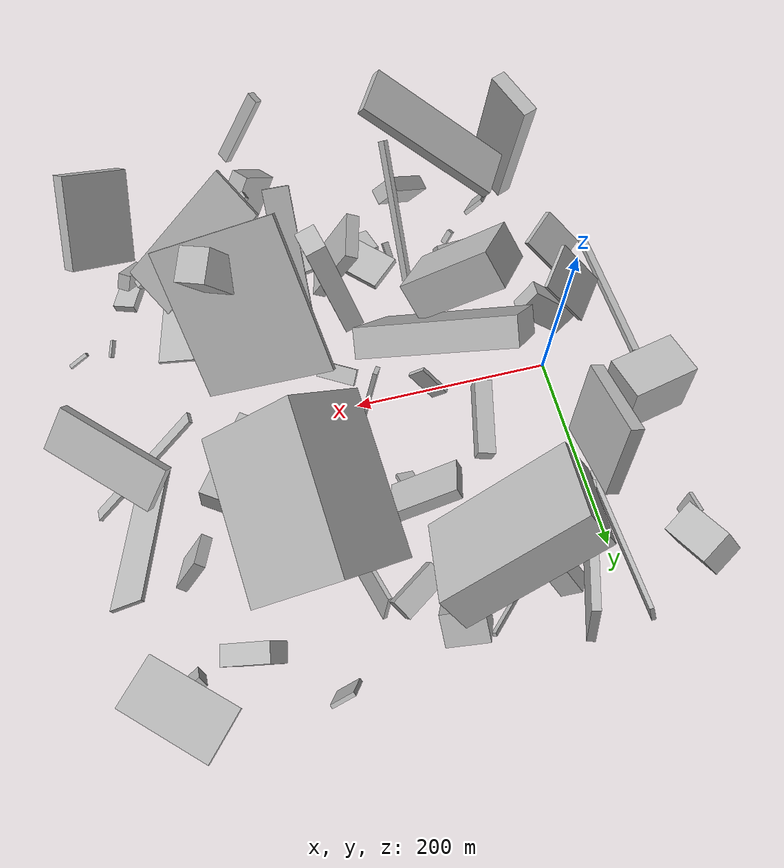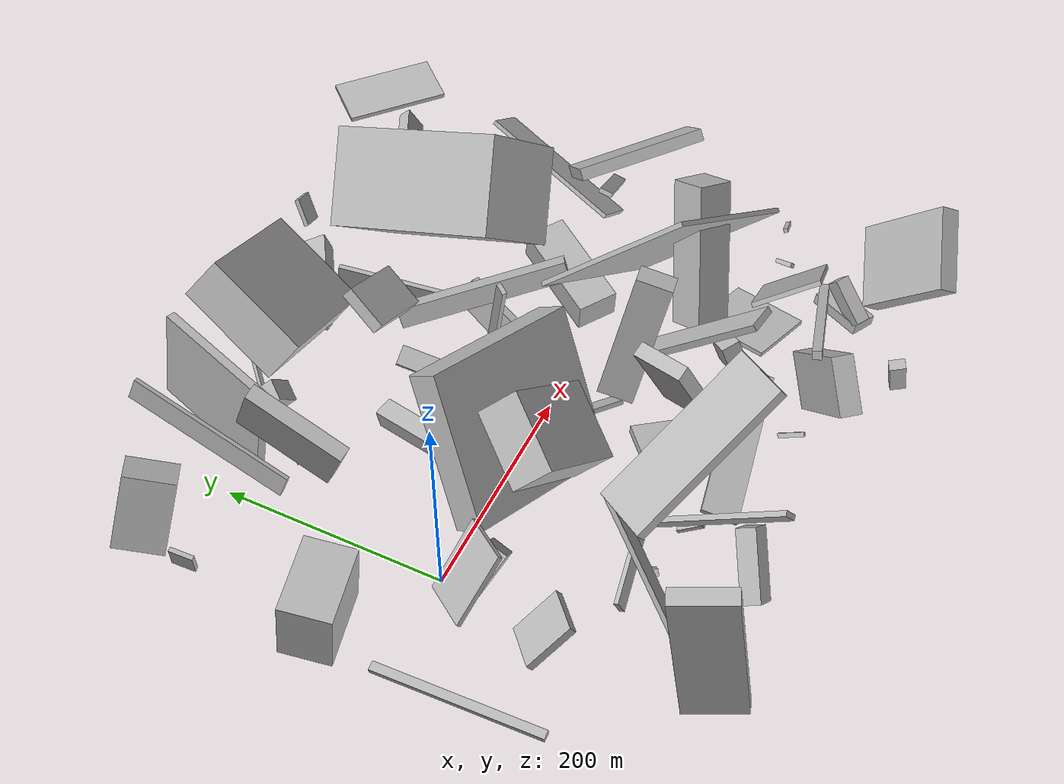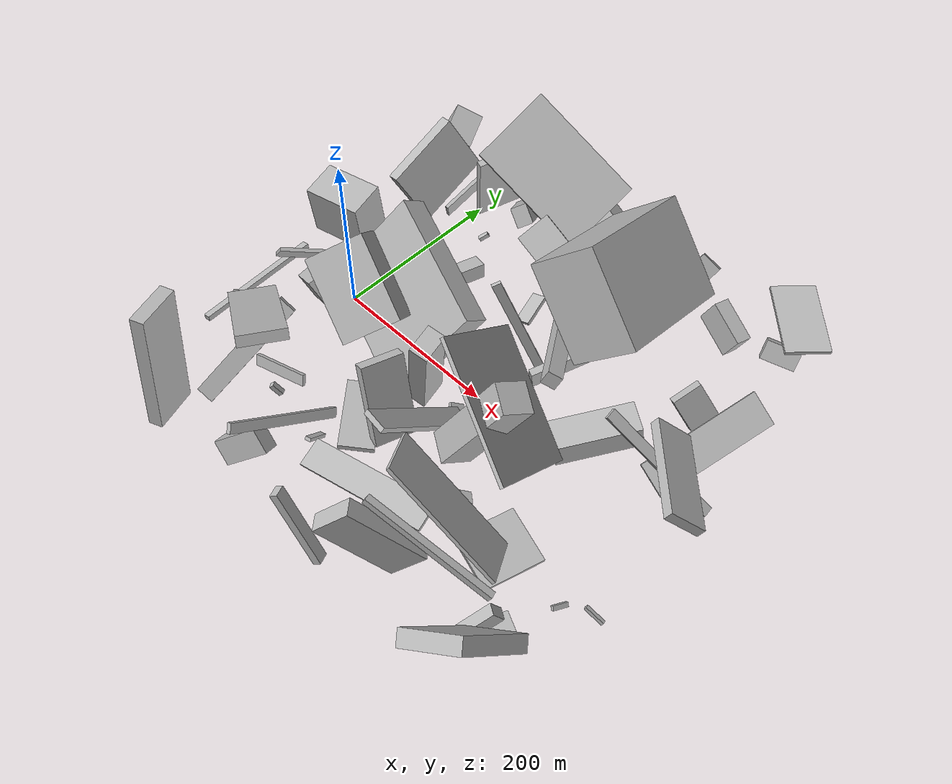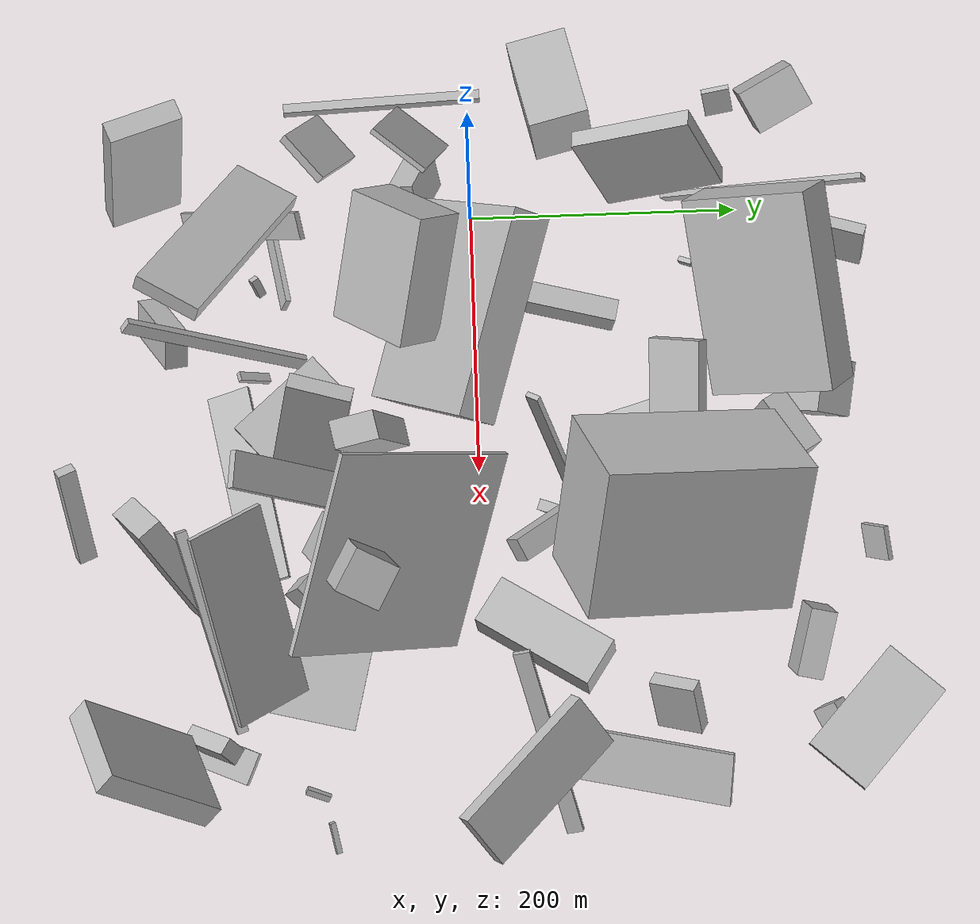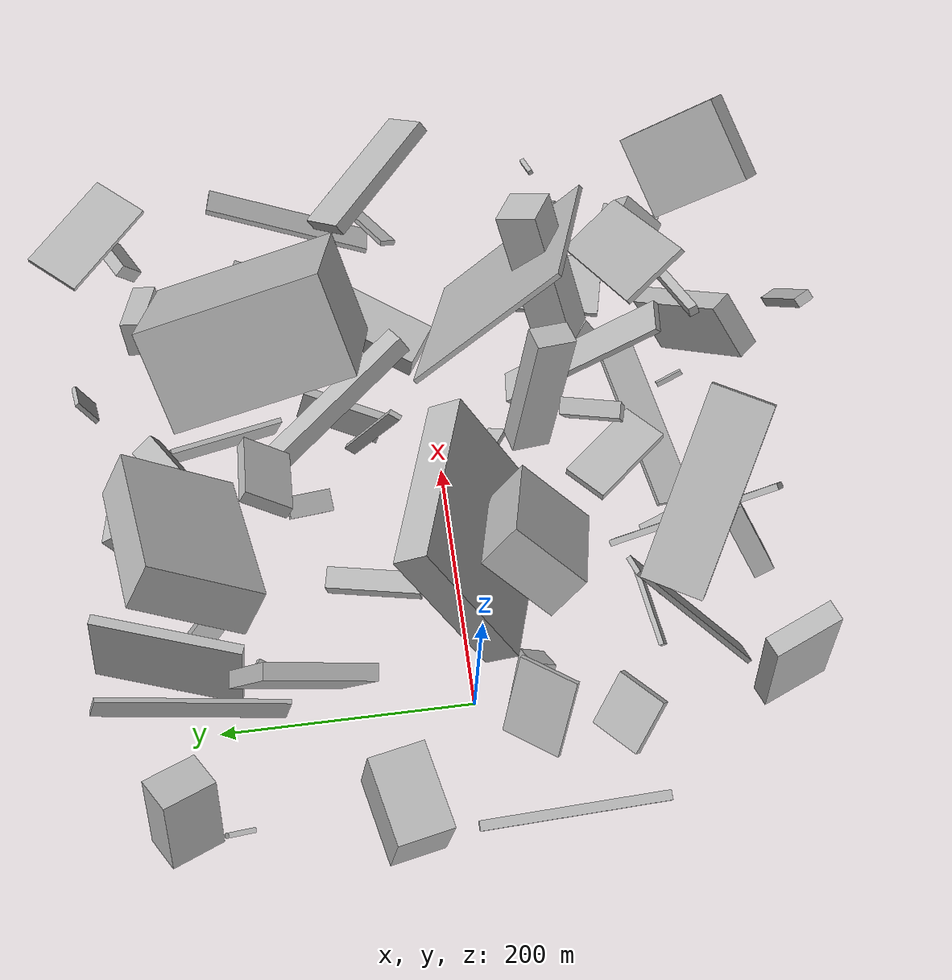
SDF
<sdf version="1.6">
 <world name="default">
  <scene>
   <sky><clouds><speed>12</speed></clouds></sky>
   <ambient>0.4 0.4 0.4 1</ambient>
   <background>0.7 0.7 0.7 1</background>
   <shadows>1</shadows>
  </scene>
  <gravity>0 0 -9.8066</gravity>
  <magnetic_field>6e-06 2.3e-05 -4.2e-05</magnetic_field>
  <physics default="0" name="default_physics" type="ode">
   <ode>
    <solver>
     <type>quick</type>
     <iters>10</iters>
     <sor>1.0</sor>
     <use_dynamic_moi_rescaling>0</use_dynamic_moi_rescaling>
    </solver>
    <constraints>
     <cfm>0</cfm>
     <erp>0.2</erp>
     <contact_max_correcting_vel>100</contact_max_correcting_vel>
     <contact_surface_layer>0.001</contact_surface_layer>
    </constraints>
   </ode>
   <max_step_size>0.004</max_step_size>
   <real_time_factor>1</real_time_factor>
   <real_time_update_rate>250</real_time_update_rate>
  </physics>
  <light name="sun" type="directional">
   <pose>0 0 10 0 0 0</pose>
   <diffuse>0.8 0.8 0.8 1</diffuse>
   <specular>0.2 0.2 0.2 1</specular>
   <attenuation>
    <range>1000</range>
    <constant>0.9</constant>
    <linear>0.01</linear>
    <quadratic>0.001</quadratic>
   </attenuation>
   <direction>-0.5 0.1 -0.9</direction>
  </light>
  <model name="building_1">
   <static>0</static>
   <pose>108.92761896593528 1.1091570338049124 90.9158892950735 0.444851006596337 -0.9033970418903438 0.9041145474530236</pose>
   <link name="link">
    <gravity>0</gravity>
    <pose>0 0 14.5 0 0 0</pose>
    <collision name="collision"><geometry><box><size>132 150 29</size></box></geometry></collision>
    <visual name="visual">
     <cast_shadows>0</cast_shadows>
     <geometry><box><size>132 150 29</size></box></geometry>
     <material>
      <script>
       <uri>model://HANNAS_wall/materials/scripts</uri>
       <uri>model://HANNAS_wall/materials/textures</uri>
       <name>vrc/HANNAS_wall</name>
      </script>
     </material>
    </visual>
   </link>
  </model>
  <model name="building_2">
   <static>0</static>
   <pose>198.25160042323378 143.05347159926956 49.079175533433244 1.3090513834178814 0.45467342652101583 0.5043819559390877</pose>
   <link name="link">
    <gravity>0</gravity>
    <pose>0 0 75.0 0 0 0</pose>
    <collision name="collision"><geometry><box><size>17 17 150</size></box></geometry></collision>
    <visual name="visual">
     <cast_shadows>0</cast_shadows>
     <geometry><box><size>17 17 150</size></box></geometry>
     <material>
      <script>
       <uri>model://HANNAS_wall/materials/scripts</uri>
       <uri>model://HANNAS_wall/materials/textures</uri>
       <name>vrc/HANNAS_wall</name>
      </script>
     </material>
    </visual>
   </link>
  </model>
  <model name="building_3">
   <static>0</static>
   <pose>271.309448827521 276.1596261565147 34.9191900610307 -0.48017534017398056 0.5004084972202174 0.17279518627782497</pose>
   <link name="link">
    <gravity>0</gravity>
    <pose>0 0 12.5 0 0 0</pose>
    <collision name="collision"><geometry><box><size>25 4 25</size></box></geometry></collision>
    <visual name="visual">
     <cast_shadows>0</cast_shadows>
     <geometry><box><size>25 4 25</size></box></geometry>
     <material>
      <script>
       <uri>model://HANNAS_wall/materials/scripts</uri>
       <uri>model://HANNAS_wall/materials/textures</uri>
       <name>vrc/HANNAS_wall</name>
      </script>
     </material>
    </visual>
   </link>
  </model>
  <model name="building_4">
   <static>0</static>
   <pose>-47.80409686620221 70.63854540356718 43.142333355688585 1.5882969257669508 0.0937636456736694 -1.3547335050061855</pose>
   <link name="link">
    <gravity>0</gravity>
    <pose>0 0 34.5 0 0 0</pose>
    <collision name="collision"><geometry><box><size>45 66 69</size></box></geometry></collision>
    <visual name="visual">
     <cast_shadows>0</cast_shadows>
     <geometry><box><size>45 66 69</size></box></geometry>
     <material>
      <script>
       <uri>model://HANNAS_wall/materials/scripts</uri>
       <uri>model://HANNAS_wall/materials/textures</uri>
       <name>vrc/HANNAS_wall</name>
      </script>
     </material>
    </visual>
   </link>
  </model>
  <model name="building_5">
   <static>0</static>
   <pose>126.44233084237415 -162.56508088388418 19.63401092244566 2.4922029464192317 -0.11703588601346196 0.2426704155922388</pose>
   <link name="link">
    <gravity>0</gravity>
    <pose>0 0 2.0 0 0 0</pose>
    <collision name="collision"><geometry><box><size>7 26 4</size></box></geometry></collision>
    <visual name="visual">
     <cast_shadows>0</cast_shadows>
     <geometry><box><size>7 26 4</size></box></geometry>
     <material>
      <script>
       <uri>model://HANNAS_wall/materials/scripts</uri>
       <uri>model://HANNAS_wall/materials/textures</uri>
       <name>vrc/HANNAS_wall</name>
      </script>
     </material>
    </visual>
   </link>
  </model>
  <model name="building_6">
   <static>0</static>
   <pose>206.0800941940971 51.276083018961664 73.07930872677183 1.2401501249241527 0.09093470712722963 2.562438088434931</pose>
   <link name="link">
    <gravity>0</gravity>
    <pose>0 0 5.0 0 0 0</pose>
    <collision name="collision"><geometry><box><size>4 150 10</size></box></geometry></collision>
    <visual name="visual">
     <cast_shadows>0</cast_shadows>
     <geometry><box><size>4 150 10</size></box></geometry>
     <material>
      <script>
       <uri>model://HANNAS_wall/materials/scripts</uri>
       <uri>model://HANNAS_wall/materials/textures</uri>
       <name>vrc/HANNAS_wall</name>
      </script>
     </material>
    </visual>
   </link>
  </model>
  <model name="building_7">
   <static>0</static>
   <pose>51.75686522283982 -145.3660532538313 37.161663748513085 0.39441601455398634 0.1678380514978433 -2.962211648278622</pose>
   <link name="link">
    <gravity>0</gravity>
    <pose>0 0 6.5 0 0 0</pose>
    <collision name="collision"><geometry><box><size>66 4 13</size></box></geometry></collision>
    <visual name="visual">
     <cast_shadows>0</cast_shadows>
     <geometry><box><size>66 4 13</size></box></geometry>
     <material>
      <script>
       <uri>model://HANNAS_wall/materials/scripts</uri>
       <uri>model://HANNAS_wall/materials/textures</uri>
       <name>vrc/HANNAS_wall</name>
      </script>
     </material>
    </visual>
   </link>
  </model>
  <model name="building_8">
   <static>0</static>
   <pose>314.13221278571245 130.13080031045814 101.69990496350567 0.7539332498833182 -0.2749399435415537 -1.4852931022130433</pose>
   <link name="link">
    <gravity>0</gravity>
    <pose>0 0 55.5 0 0 0</pose>
    <collision name="collision"><geometry><box><size>148 84 111</size></box></geometry></collision>
    <visual name="visual">
     <cast_shadows>0</cast_shadows>
     <geometry><box><size>148 84 111</size></box></geometry>
     <material>
      <script>
       <uri>model://HANNAS_wall/materials/scripts</uri>
       <uri>model://HANNAS_wall/materials/textures</uri>
       <name>vrc/HANNAS_wall</name>
      </script>
     </material>
    </visual>
   </link>
  </model>
  <model name="building_9">
   <static>0</static>
   <pose>251.46218939622824 75.69975972268443 27.983348864827583 0.5929756755089176 -1.2695999818338821 -0.9777076243305453</pose>
   <link name="link">
    <gravity>0</gravity>
    <pose>0 0 4.0 0 0 0</pose>
    <collision name="collision"><geometry><box><size>32 69 8</size></box></geometry></collision>
    <visual name="visual">
     <cast_shadows>0</cast_shadows>
     <geometry><box><size>32 69 8</size></box></geometry>
     <material>
      <script>
       <uri>model://HANNAS_wall/materials/scripts</uri>
       <uri>model://HANNAS_wall/materials/textures</uri>
       <name>vrc/HANNAS_wall</name>
      </script>
     </material>
    </visual>
   </link>
  </model>
  <model name="building_10">
   <static>0</static>
   <pose>153.48261409373862 235.01066010380458 37.91238833348297 0.6801048295756384 -0.25590591778857114 2.970894613970442</pose>
   <link name="link">
    <gravity>0</gravity>
    <pose>0 0 20.5 0 0 0</pose>
    <collision name="collision"><geometry><box><size>40 31 41</size></box></geometry></collision>
    <visual name="visual">
     <cast_shadows>0</cast_shadows>
     <geometry><box><size>40 31 41</size></box></geometry>
     <material>
      <script>
       <uri>model://HANNAS_wall/materials/scripts</uri>
       <uri>model://HANNAS_wall/materials/textures</uri>
       <name>vrc/HANNAS_wall</name>
      </script>
     </material>
    </visual>
   </link>
  </model>
  <model name="building_11">
   <static>0</static>
   <pose>344.3313192799353 -184.75657756696557 117.12587466690236 2.046882346882766 0.7111935275947001 -2.2463232432462896</pose>
   <link name="link">
    <gravity>0</gravity>
    <pose>0 0 29.0 0 0 0</pose>
    <collision name="collision"><geometry><box><size>4 150 58</size></box></geometry></collision>
    <visual name="visual">
     <cast_shadows>0</cast_shadows>
     <geometry><box><size>4 150 58</size></box></geometry>
     <material>
      <script>
       <uri>model://HANNAS_wall/materials/scripts</uri>
       <uri>model://HANNAS_wall/materials/textures</uri>
       <name>vrc/HANNAS_wall</name>
      </script>
     </material>
    </visual>
   </link>
  </model>
  <model name="building_12">
   <static>0</static>
   <pose>27.67088477975269 -143.89645777411636 146.68886771225465 0.08129965539777025 -1.0061757995490062 2.5353327469812714</pose>
   <link name="link">
    <gravity>0</gravity>
    <pose>0 0 75.0 0 0 0</pose>
    <collision name="collision"><geometry><box><size>11 48 150</size></box></geometry></collision>
    <visual name="visual">
     <cast_shadows>0</cast_shadows>
     <geometry><box><size>11 48 150</size></box></geometry>
     <material>
      <script>
       <uri>model://HANNAS_wall/materials/scripts</uri>
       <uri>model://HANNAS_wall/materials/textures</uri>
       <name>vrc/HANNAS_wall</name>
      </script>
     </material>
    </visual>
   </link>
  </model>
  <model name="building_13">
   <static>0</static>
   <pose>441.6505852410696 29.50773460936116 70.51883789570535 -0.1148339543800434 0.7023443152937123 0.7368856496147438</pose>
   <link name="link">
    <gravity>0</gravity>
    <pose>0 0 5.5 0 0 0</pose>
    <collision name="collision"><geometry><box><size>45 117 11</size></box></geometry></collision>
    <visual name="visual">
     <cast_shadows>0</cast_shadows>
     <geometry><box><size>45 117 11</size></box></geometry>
     <material>
      <script>
       <uri>model://HANNAS_wall/materials/scripts</uri>
       <uri>model://HANNAS_wall/materials/textures</uri>
       <name>vrc/HANNAS_wall</name>
      </script>
     </material>
    </visual>
   </link>
  </model>
  <model name="building_14">
   <static>0</static>
   <pose>65.584072626675 -78.1203078863408 113.86144953897222 0.9669818712258077 -0.6619527659017845 2.8958082803707916</pose>
   <link name="link">
    <gravity>0</gravity>
    <pose>0 0 33.5 0 0 0</pose>
    <collision name="collision"><geometry><box><size>95 39 67</size></box></geometry></collision>
    <visual name="visual">
     <cast_shadows>0</cast_shadows>
     <geometry><box><size>95 39 67</size></box></geometry>
     <material>
      <script>
       <uri>model://HANNAS_wall/materials/scripts</uri>
       <uri>model://HANNAS_wall/materials/textures</uri>
       <name>vrc/HANNAS_wall</name>
      </script>
     </material>
    </visual>
   </link>
  </model>
  <model name="building_15">
   <static>0</static>
   <pose>183.12780183464247 209.92753221198657 15.632828613654608 -0.07273418890019225 0.03508444722024155 -1.5741671485204205</pose>
   <link name="link">
    <gravity>0</gravity>
    <pose>0 0 2.0 0 0 0</pose>
    <collision name="collision"><geometry><box><size>4 8 4</size></box></geometry></collision>
    <visual name="visual">
     <cast_shadows>0</cast_shadows>
     <geometry><box><size>4 8 4</size></box></geometry>
     <material>
      <script>
       <uri>model://HANNAS_wall/materials/scripts</uri>
       <uri>model://HANNAS_wall/materials/textures</uri>
       <name>vrc/HANNAS_wall</name>
      </script>
     </material>
    </visual>
   </link>
  </model>
  <model name="building_16">
   <static>0</static>
   <pose>145.27001832934212 -104.79018052795047 71.59741765336375 -1.6792455989428243 -0.11587739946529418 -2.4194974907411972</pose>
   <link name="link">
    <gravity>0</gravity>
    <pose>0 0 38.0 0 0 0</pose>
    <collision name="collision"><geometry><box><size>37 7 76</size></box></geometry></collision>
    <visual name="visual">
     <cast_shadows>0</cast_shadows>
     <geometry><box><size>37 7 76</size></box></geometry>
     <material>
      <script>
       <uri>model://HANNAS_wall/materials/scripts</uri>
       <uri>model://HANNAS_wall/materials/textures</uri>
       <name>vrc/HANNAS_wall</name>
      </script>
     </material>
    </visual>
   </link>
  </model>
  <model name="building_17">
   <static>0</static>
   <pose>195.49985942945017 -27.27328294606699 9.939008811027279 1.8549362795923843 -0.9635150105756849 0.7304685750423027</pose>
   <link name="link">
    <gravity>0</gravity>
    <pose>0 0 21.0 0 0 0</pose>
    <collision name="collision"><geometry><box><size>4 17 42</size></box></geometry></collision>
    <visual name="visual">
     <cast_shadows>0</cast_shadows>
     <geometry><box><size>4 17 42</size></box></geometry>
     <material>
      <script>
       <uri>model://HANNAS_wall/materials/scripts</uri>
       <uri>model://HANNAS_wall/materials/textures</uri>
       <name>vrc/HANNAS_wall</name>
      </script>
     </material>
    </visual>
   </link>
  </model>
  <model name="building_18">
   <static>0</static>
   <pose>217.26068953064262 -182.94934339270765 23.737473127904735 -1.2953731329364504 -0.0575630570490676 0.1940110884674498</pose>
   <link name="link">
    <gravity>0</gravity>
    <pose>0 0 16.0 0 0 0</pose>
    <collision name="collision"><geometry><box><size>150 4 32</size></box></geometry></collision>
    <visual name="visual">
     <cast_shadows>0</cast_shadows>
     <geometry><box><size>150 4 32</size></box></geometry>
     <material>
      <script>
       <uri>model://HANNAS_wall/materials/scripts</uri>
       <uri>model://HANNAS_wall/materials/textures</uri>
       <name>vrc/HANNAS_wall</name>
      </script>
     </material>
    </visual>
   </link>
  </model>
  <model name="building_19">
   <static>0</static>
   <pose>406.6520395727039 252.1589130695408 36.68635667170851 0.9768254480423515 0.21807874800904573 0.4655465089382893</pose>
   <link name="link">
    <gravity>0</gravity>
    <pose>0 0 5.5 0 0 0</pose>
    <collision name="collision"><geometry><box><size>39 22 11</size></box></geometry></collision>
    <visual name="visual">
     <cast_shadows>0</cast_shadows>
     <geometry><box><size>39 22 11</size></box></geometry>
     <material>
      <script>
       <uri>model://HANNAS_wall/materials/scripts</uri>
       <uri>model://HANNAS_wall/materials/textures</uri>
       <name>vrc/HANNAS_wall</name>
      </script>
     </material>
    </visual>
   </link>
  </model>
  <model name="building_20">
   <static>0</static>
   <pose>286.2004195757087 -224.80573043421927 63.08862996705318 1.527129767104768 -0.8103144048098492 -2.4048571852372493</pose>
   <link name="link">
    <gravity>0</gravity>
    <pose>0 0 9.5 0 0 0</pose>
    <collision name="collision"><geometry><box><size>101 50 19</size></box></geometry></collision>
    <visual name="visual">
     <cast_shadows>0</cast_shadows>
     <geometry><box><size>101 50 19</size></box></geometry>
     <material>
      <script>
       <uri>model://HANNAS_wall/materials/scripts</uri>
       <uri>model://HANNAS_wall/materials/textures</uri>
       <name>vrc/HANNAS_wall</name>
      </script>
     </material>
    </visual>
   </link>
  </model>
  <model name="building_21">
   <static>0</static>
   <pose>99.26611399477568 103.37118377920183 50.41794446233584 1.4721571936179456 -0.10450850415750572 -0.21615586374680962</pose>
   <link name="link">
    <gravity>0</gravity>
    <pose>0 0 37.0 0 0 0</pose>
    <collision name="collision"><geometry><box><size>17 18 74</size></box></geometry></collision>
    <visual name="visual">
     <cast_shadows>0</cast_shadows>
     <geometry><box><size>17 18 74</size></box></geometry>
     <material>
      <script>
       <uri>model://HANNAS_wall/materials/scripts</uri>
       <uri>model://HANNAS_wall/materials/textures</uri>
       <name>vrc/HANNAS_wall</name>
      </script>
     </material>
    </visual>
   </link>
  </model>
  <model name="building_22">
   <static>0</static>
   <pose>470.72890589318297 -111.86367511514258 18.530793527064265 2.0060452940399953 0.9961490278584332 -2.4348328868495988</pose>
   <link name="link">
    <gravity>0</gravity>
    <pose>0 0 2.0 0 0 0</pose>
    <collision name="collision"><geometry><box><size>4 23 4</size></box></geometry></collision>
    <visual name="visual">
     <cast_shadows>0</cast_shadows>
     <geometry><box><size>4 23 4</size></box></geometry>
     <material>
      <script>
       <uri>model://HANNAS_wall/materials/scripts</uri>
       <uri>model://HANNAS_wall/materials/textures</uri>
       <name>vrc/HANNAS_wall</name>
      </script>
     </material>
    </visual>
   </link>
  </model>
  <model name="building_23">
   <static>0</static>
   <pose>259.3783957679001 -199.32771264890073 7.4336194877664745 2.3332922150375697 -0.2975626060138215 -1.2852545758391543</pose>
   <link name="link">
    <gravity>0</gravity>
    <pose>0 0 2.0 0 0 0</pose>
    <collision name="collision"><geometry><box><size>23 4 4</size></box></geometry></collision>
    <visual name="visual">
     <cast_shadows>0</cast_shadows>
     <geometry><box><size>23 4 4</size></box></geometry>
     <material>
      <script>
       <uri>model://HANNAS_wall/materials/scripts</uri>
       <uri>model://HANNAS_wall/materials/textures</uri>
       <name>vrc/HANNAS_wall</name>
      </script>
     </material>
    </visual>
   </link>
  </model>
  <model name="building_24">
   <static>0</static>
   <pose>192.05206143267165 -65.90613918253973 68.38124238305207 -0.21908819118695452 0.1910549115262642 -1.4031955453495832</pose>
   <link name="link">
    <gravity>0</gravity>
    <pose>0 0 61.0 0 0 0</pose>
    <collision name="collision"><geometry><box><size>31 20 122</size></box></geometry></collision>
    <visual name="visual">
     <cast_shadows>0</cast_shadows>
     <geometry><box><size>31 20 122</size></box></geometry>
     <material>
      <script>
       <uri>model://HANNAS_wall/materials/scripts</uri>
       <uri>model://HANNAS_wall/materials/textures</uri>
       <name>vrc/HANNAS_wall</name>
      </script>
     </material>
    </visual>
   </link>
  </model>
  <model name="building_25">
   <static>0</static>
   <pose>354.62669199752605 -76.42067063004951 98.72467701578478 0.7995901483951052 -0.7172725776813803 -1.3350425459473734</pose>
   <link name="link">
    <gravity>0</gravity>
    <pose>0 0 73.0 0 0 0</pose>
    <collision name="collision"><geometry><box><size>150 4 146</size></box></geometry></collision>
    <visual name="visual">
     <cast_shadows>0</cast_shadows>
     <geometry><box><size>150 4 146</size></box></geometry>
     <material>
      <script>
       <uri>model://HANNAS_wall/materials/scripts</uri>
       <uri>model://HANNAS_wall/materials/textures</uri>
       <name>vrc/HANNAS_wall</name>
      </script>
     </material>
    </visual>
   </link>
  </model>
  <model name="building_26">
   <static>0</static>
   <pose>38.463185359579164 -165.38696103266233 73.61368499360071 0.9638263356743192 -0.4803793241743744 -1.0517523667112825</pose>
   <link name="link">
    <gravity>0</gravity>
    <pose>0 0 10.0 0 0 0</pose>
    <collision name="collision"><geometry><box><size>4 150 20</size></box></geometry></collision>
    <visual name="visual">
     <cast_shadows>0</cast_shadows>
     <geometry><box><size>4 150 20</size></box></geometry>
     <material>
      <script>
       <uri>model://HANNAS_wall/materials/scripts</uri>
       <uri>model://HANNAS_wall/materials/textures</uri>
       <name>vrc/HANNAS_wall</name>
      </script>
     </material>
    </visual>
   </link>
  </model>
  <model name="building_27">
   <static>0</static>
   <pose>396.3382199832367 -172.95391269558104 39.805390713759 0.2692987545357231 1.0836601063127982 -2.5636588204050352</pose>
   <link name="link">
    <gravity>0</gravity>
    <pose>0 0 75.0 0 0 0</pose>
    <collision name="collision"><geometry><box><size>8 8 150</size></box></geometry></collision>
    <visual name="visual">
     <cast_shadows>0</cast_shadows>
     <geometry><box><size>8 8 150</size></box></geometry>
     <material>
      <script>
       <uri>model://HANNAS_wall/materials/scripts</uri>
       <uri>model://HANNAS_wall/materials/textures</uri>
       <name>vrc/HANNAS_wall</name>
      </script>
     </material>
    </visual>
   </link>
  </model>
  <model name="building_28">
   <static>0</static>
   <pose>240.23394095765536 -58.55038426054961 59.613053559721855 0.14944287650694688 -0.8105721516914536 1.359838313577562</pose>
   <link name="link">
    <gravity>0</gravity>
    <pose>0 0 75.0 0 0 0</pose>
    <collision name="collision"><geometry><box><size>6 26 150</size></box></geometry></collision>
    <visual name="visual">
     <cast_shadows>0</cast_shadows>
     <geometry><box><size>6 26 150</size></box></geometry>
     <material>
      <script>
       <uri>model://HANNAS_wall/materials/scripts</uri>
       <uri>model://HANNAS_wall/materials/textures</uri>
       <name>vrc/HANNAS_wall</name>
      </script>
     </material>
    </visual>
   </link>
  </model>
  <model name="building_29">
   <static>0</static>
   <pose>345.49752148085105 33.119906310762595 20.48030579736721 1.6674967265477612 -1.4694513475226307 -2.252617076196469</pose>
   <link name="link">
    <gravity>0</gravity>
    <pose>0 0 18.5 0 0 0</pose>
    <collision name="collision"><geometry><box><size>28 94 37</size></box></geometry></collision>
    <visual name="visual">
     <cast_shadows>0</cast_shadows>
     <geometry><box><size>28 94 37</size></box></geometry>
     <material>
      <script>
       <uri>model://HANNAS_wall/materials/scripts</uri>
       <uri>model://HANNAS_wall/materials/textures</uri>
       <name>vrc/HANNAS_wall</name>
      </script>
     </material>
    </visual>
   </link>
  </model>
  <model name="building_30">
   <static>0</static>
   <pose>163.63800397443208 110.10944317833437 28.124298845414508 -1.2124893372872736 0.2797996463834191 -1.3653123604397508</pose>
   <link name="link">
    <gravity>0</gravity>
    <pose>0 0 9.0 0 0 0</pose>
    <collision name="collision"><geometry><box><size>37 4 18</size></box></geometry></collision>
    <visual name="visual">
     <cast_shadows>0</cast_shadows>
     <geometry><box><size>37 4 18</size></box></geometry>
     <material>
      <script>
       <uri>model://HANNAS_wall/materials/scripts</uri>
       <uri>model://HANNAS_wall/materials/textures</uri>
       <name>vrc/HANNAS_wall</name>
      </script>
     </material>
    </visual>
   </link>
  </model>
  <model name="building_31">
   <static>0</static>
   <pose>-91.57748993968487 -139.85851607774762 5.683239167431704 -1.5577552308567353 -0.1697799041194158 0.038105437873531524</pose>
   <link name="link">
    <gravity>0</gravity>
    <pose>0 0 75.0 0 0 0</pose>
    <collision name="collision"><geometry><box><size>8 6 150</size></box></geometry></collision>
    <visual name="visual">
     <cast_shadows>0</cast_shadows>
     <geometry><box><size>8 6 150</size></box></geometry>
     <material>
      <script>
       <uri>model://HANNAS_wall/materials/scripts</uri>
       <uri>model://HANNAS_wall/materials/textures</uri>
       <name>vrc/HANNAS_wall</name>
      </script>
     </material>
    </visual>
   </link>
  </model>
  <model name="building_32">
   <static>0</static>
   <pose>188.00563093588408 -138.43972566766763 106.05037090390016 1.671492469029013 0.40305659564858853 2.9237182061413276</pose>
   <link name="link">
    <gravity>0</gravity>
    <pose>0 0 23.0 0 0 0</pose>
    <collision name="collision"><geometry><box><size>13 89 46</size></box></geometry></collision>
    <visual name="visual">
     <cast_shadows>0</cast_shadows>
     <geometry><box><size>13 89 46</size></box></geometry>
     <material>
      <script>
       <uri>model://HANNAS_wall/materials/scripts</uri>
       <uri>model://HANNAS_wall/materials/textures</uri>
       <name>vrc/HANNAS_wall</name>
      </script>
     </material>
    </visual>
   </link>
  </model>
  <model name="building_33">
   <static>0</static>
   <pose>49.64410320752831 165.13493666648355 19.819863066048974 2.0361624733915282 0.08442510518736468 -0.4836405701337906</pose>
   <link name="link">
    <gravity>0</gravity>
    <pose>0 0 6.0 0 0 0</pose>
    <collision name="collision"><geometry><box><size>4 6 12</size></box></geometry></collision>
    <visual name="visual">
     <cast_shadows>0</cast_shadows>
     <geometry><box><size>4 6 12</size></box></geometry>
     <material>
      <script>
       <uri>model://HANNAS_wall/materials/scripts</uri>
       <uri>model://HANNAS_wall/materials/textures</uri>
       <name>vrc/HANNAS_wall</name>
      </script>
     </material>
    </visual>
   </link>
  </model>
  <model name="building_34">
   <static>0</static>
   <pose>-51.27369232317652 -99.86563083681563 43.851618925242 0.326343674433905 -0.8454706994314217 2.0395198473788674</pose>
   <link name="link">
    <gravity>0</gravity>
    <pose>0 0 23.5 0 0 0</pose>
    <collision name="collision"><geometry><box><size>7 42 47</size></box></geometry></collision>
    <visual name="visual">
     <cast_shadows>0</cast_shadows>
     <geometry><box><size>7 42 47</size></box></geometry>
     <material>
      <script>
       <uri>model://HANNAS_wall/materials/scripts</uri>
       <uri>model://HANNAS_wall/materials/textures</uri>
       <name>vrc/HANNAS_wall</name>
      </script>
     </material>
    </visual>
   </link>
  </model>
  <model name="building_35">
   <static>0</static>
   <pose>438.3765837646679 -122.18511189968407 9.037505285994406 2.666455203661863 0.7411163124455422 -0.6447151358629531</pose>
   <link name="link">
    <gravity>0</gravity>
    <pose>0 0 2.0 0 0 0</pose>
    <collision name="collision"><geometry><box><size>5 18 4</size></box></geometry></collision>
    <visual name="visual">
     <cast_shadows>0</cast_shadows>
     <geometry><box><size>5 18 4</size></box></geometry>
     <material>
      <script>
       <uri>model://HANNAS_wall/materials/scripts</uri>
       <uri>model://HANNAS_wall/materials/textures</uri>
       <name>vrc/HANNAS_wall</name>
      </script>
     </material>
    </visual>
   </link>
  </model>
  <model name="building_36">
   <static>0</static>
   <pose>105.02336066873318 167.31886077958148 109.83132820709912 0.9585884502627929 -0.5418133650064547 -2.9757224430085594</pose>
   <link name="link">
    <gravity>0</gravity>
    <pose>0 0 46.5 0 0 0</pose>
    <collision name="collision"><geometry><box><size>142 38 93</size></box></geometry></collision>
    <visual name="visual">
     <cast_shadows>0</cast_shadows>
     <geometry><box><size>142 38 93</size></box></geometry>
     <material>
      <script>
       <uri>model://HANNAS_wall/materials/scripts</uri>
       <uri>model://HANNAS_wall/materials/textures</uri>
       <name>vrc/HANNAS_wall</name>
      </script>
     </material>
    </visual>
   </link>
  </model>
  <model name="building_37">
   <static>0</static>
   <pose>111.81917927068345 -185.0556277846357 63.45861390775684 -2.723860229268128 -0.6324063533474346 -1.5883897390675659</pose>
   <link name="link">
    <gravity>0</gravity>
    <pose>0 0 5.5 0 0 0</pose>
    <collision name="collision"><geometry><box><size>150 5 11</size></box></geometry></collision>
    <visual name="visual">
     <cast_shadows>0</cast_shadows>
     <geometry><box><size>150 5 11</size></box></geometry>
     <material>
      <script>
       <uri>model://HANNAS_wall/materials/scripts</uri>
       <uri>model://HANNAS_wall/materials/textures</uri>
       <name>vrc/HANNAS_wall</name>
      </script>
     </material>
    </visual>
   </link>
  </model>
  <model name="building_38">
   <static>0</static>
   <pose>347.81259887753555 241.07253230154254 43.692300565031054 -1.3759988414197866 -0.3969980159179085 2.885353476825457</pose>
   <link name="link">
    <gravity>0</gravity>
    <pose>0 0 9.5 0 0 0</pose>
    <collision name="collision"><geometry><box><size>49 32 19</size></box></geometry></collision>
    <visual name="visual">
     <cast_shadows>0</cast_shadows>
     <geometry><box><size>49 32 19</size></box></geometry>
     <material>
      <script>
       <uri>model://HANNAS_wall/materials/scripts</uri>
       <uri>model://HANNAS_wall/materials/textures</uri>
       <name>vrc/HANNAS_wall</name>
      </script>
     </material>
    </visual>
   </link>
  </model>
  <model name="building_39">
   <static>0</static>
   <pose>417.77541432659365 -167.54316982423228 8.733441055231687 1.5818986145323026 0.16174938901429026 -0.4098982619330708</pose>
   <link name="link">
    <gravity>0</gravity>
    <pose>0 0 24.5 0 0 0</pose>
    <collision name="collision"><geometry><box><size>24 10 49</size></box></geometry></collision>
    <visual name="visual">
     <cast_shadows>0</cast_shadows>
     <geometry><box><size>24 10 49</size></box></geometry>
     <material>
      <script>
       <uri>model://HANNAS_wall/materials/scripts</uri>
       <uri>model://HANNAS_wall/materials/textures</uri>
       <name>vrc/HANNAS_wall</name>
      </script>
     </material>
    </visual>
   </link>
  </model>
  <model name="building_40">
   <static>0</static>
   <pose>394.8289847082499 -248.13226627240266 64.10241752852434 -0.8330568444821936 -0.8038116538961013 -1.7721564506147658</pose>
   <link name="link">
    <gravity>0</gravity>
    <pose>0 0 36.0 0 0 0</pose>
    <collision name="collision"><geometry><box><size>97 18 72</size></box></geometry></collision>
    <visual name="visual">
     <cast_shadows>0</cast_shadows>
     <geometry><box><size>97 18 72</size></box></geometry>
     <material>
      <script>
       <uri>model://HANNAS_wall/materials/scripts</uri>
       <uri>model://HANNAS_wall/materials/textures</uri>
       <name>vrc/HANNAS_wall</name>
      </script>
     </material>
    </visual>
   </link>
  </model>
  <model name="building_41">
   <static>0</static>
   <pose>237.32602196322185 175.17191456730689 31.00987535145919 -1.7842610594418777 -0.1557297494365798 1.828681311741423</pose>
   <link name="link">
    <gravity>0</gravity>
    <pose>0 0 2.0 0 0 0</pose>
    <collision name="collision"><geometry><box><size>94 37 4</size></box></geometry></collision>
    <visual name="visual">
     <cast_shadows>0</cast_shadows>
     <geometry><box><size>94 37 4</size></box></geometry>
     <material>
      <script>
       <uri>model://HANNAS_wall/materials/scripts</uri>
       <uri>model://HANNAS_wall/materials/textures</uri>
       <name>vrc/HANNAS_wall</name>
      </script>
     </material>
    </visual>
   </link>
  </model>
  <model name="building_42">
   <static>0</static>
   <pose>69.54506433657181 218.61423045656312 36.51022961116097 2.04315063810315 -0.661007322969496 -0.9474762754178069</pose>
   <link name="link">
    <gravity>0</gravity>
    <pose>0 0 9.5 0 0 0</pose>
    <collision name="collision"><geometry><box><size>70 24 19</size></box></geometry></collision>
    <visual name="visual">
     <cast_shadows>0</cast_shadows>
     <geometry><box><size>70 24 19</size></box></geometry>
     <material>
      <script>
       <uri>model://HANNAS_wall/materials/scripts</uri>
       <uri>model://HANNAS_wall/materials/textures</uri>
       <name>vrc/HANNAS_wall</name>
      </script>
     </material>
    </visual>
   </link>
  </model>
  <model name="building_43">
   <static>0</static>
   <pose>66.31344220513908 -156.48284586513682 29.851650977597963 0.7105058087515828 -0.07767899079125964 -0.9362721830614495</pose>
   <link name="link">
    <gravity>0</gravity>
    <pose>0 0 7.5 0 0 0</pose>
    <collision name="collision"><geometry><box><size>6 6 15</size></box></geometry></collision>
    <visual name="visual">
     <cast_shadows>0</cast_shadows>
     <geometry><box><size>6 6 15</size></box></geometry>
     <material>
      <script>
       <uri>model://HANNAS_wall/materials/scripts</uri>
       <uri>model://HANNAS_wall/materials/textures</uri>
       <name>vrc/HANNAS_wall</name>
      </script>
     </material>
    </visual>
   </link>
  </model>
  <model name="building_44">
   <static>0</static>
   <pose>427.3652430671349 103.6980667927843 38.161507359967004 -0.29134622302052754 -0.6017615393546298 3.0451503814171423</pose>
   <link name="link">
    <gravity>0</gravity>
    <pose>0 0 2.0 0 0 0</pose>
    <collision name="collision"><geometry><box><size>39 139 4</size></box></geometry></collision>
    <visual name="visual">
     <cast_shadows>0</cast_shadows>
     <geometry><box><size>39 139 4</size></box></geometry>
     <material>
      <script>
       <uri>model://HANNAS_wall/materials/scripts</uri>
       <uri>model://HANNAS_wall/materials/textures</uri>
       <name>vrc/HANNAS_wall</name>
      </script>
     </material>
    </visual>
   </link>
  </model>
  <model name="building_45">
   <static>0</static>
   <pose>10.022626397155447 128.1813613289313 119.20723398309332 2.080729772362123 -1.1131176990443266 -2.13227591241128</pose>
   <link name="link">
    <gravity>0</gravity>
    <pose>0 0 6.5 0 0 0</pose>
    <collision name="collision"><geometry><box><size>75 88 13</size></box></geometry></collision>
    <visual name="visual">
     <cast_shadows>0</cast_shadows>
     <geometry><box><size>75 88 13</size></box></geometry>
     <material>
      <script>
       <uri>model://HANNAS_wall/materials/scripts</uri>
       <uri>model://HANNAS_wall/materials/textures</uri>
       <name>vrc/HANNAS_wall</name>
      </script>
     </material>
    </visual>
   </link>
  </model>
  <model name="building_46">
   <static>0</static>
   <pose>1.603965584171851 -38.03450383606294 37.41855566172998 -0.6405819972365442 -0.3152502260725789 1.4454881178120165</pose>
   <link name="link">
    <gravity>0</gravity>
    <pose>0 0 15.5 0 0 0</pose>
    <collision name="collision"><geometry><box><size>19 54 31</size></box></geometry></collision>
    <visual name="visual">
     <cast_shadows>0</cast_shadows>
     <geometry><box><size>19 54 31</size></box></geometry>
     <material>
      <script>
       <uri>model://HANNAS_wall/materials/scripts</uri>
       <uri>model://HANNAS_wall/materials/textures</uri>
       <name>vrc/HANNAS_wall</name>
      </script>
     </material>
    </visual>
   </link>
  </model>
  <model name="building_47">
   <static>0</static>
   <pose>115.24760388528435 244.59722043891855 29.339501697559093 2.2507347803523006 -0.4137637012458112 0.7693379811212843</pose>
   <link name="link">
    <gravity>0</gravity>
    <pose>0 0 2.0 0 0 0</pose>
    <collision name="collision"><geometry><box><size>65 4 4</size></box></geometry></collision>
    <visual name="visual">
     <cast_shadows>0</cast_shadows>
     <geometry><box><size>65 4 4</size></box></geometry>
     <material>
      <script>
       <uri>model://HANNAS_wall/materials/scripts</uri>
       <uri>model://HANNAS_wall/materials/textures</uri>
       <name>vrc/HANNAS_wall</name>
      </script>
     </material>
    </visual>
   </link>
  </model>
  <model name="building_48">
   <static>0</static>
   <pose>46.42672679407255 228.28260991606174 72.42763947777061 0.3357318124629977 -1.4203341657589568 -0.6459007692428782</pose>
   <link name="link">
    <gravity>0</gravity>
    <pose>0 0 4.0 0 0 0</pose>
    <collision name="collision"><geometry><box><size>89 116 8</size></box></geometry></collision>
    <visual name="visual">
     <cast_shadows>0</cast_shadows>
     <geometry><box><size>89 116 8</size></box></geometry>
     <material>
      <script>
       <uri>model://HANNAS_wall/materials/scripts</uri>
       <uri>model://HANNAS_wall/materials/textures</uri>
       <name>vrc/HANNAS_wall</name>
      </script>
     </material>
    </visual>
   </link>
  </model>
  <model name="building_49">
   <static>0</static>
   <pose>-56.390948004924695 236.48807725672862 45.987089804171134 -1.1524692097950253 -0.23929088171610283 2.0043232837378744</pose>
   <link name="link">
    <gravity>0</gravity>
    <pose>0 0 16.5 0 0 0</pose>
    <collision name="collision"><geometry><box><size>44 67 33</size></box></geometry></collision>
    <visual name="visual">
     <cast_shadows>0</cast_shadows>
     <geometry><box><size>44 67 33</size></box></geometry>
     <material>
      <script>
       <uri>model://HANNAS_wall/materials/scripts</uri>
       <uri>model://HANNAS_wall/materials/textures</uri>
       <name>vrc/HANNAS_wall</name>
      </script>
     </material>
    </visual>
   </link>
  </model>
  <model name="building_50">
   <static>0</static>
   <pose>202.45394670445972 212.68112902408177 83.51655801772068 -1.9055831297912758 0.07365800945420607 0.5725984110568649</pose>
   <link name="link">
    <gravity>0</gravity>
    <pose>0 0 10.0 0 0 0</pose>
    <collision name="collision"><geometry><box><size>47 18 20</size></box></geometry></collision>
    <visual name="visual">
     <cast_shadows>0</cast_shadows>
     <geometry><box><size>47 18 20</size></box></geometry>
     <material>
      <script>
       <uri>model://HANNAS_wall/materials/scripts</uri>
       <uri>model://HANNAS_wall/materials/textures</uri>
       <name>vrc/HANNAS_wall</name>
      </script>
     </material>
    </visual>
   </link>
  </model>
  <model name="building_51">
   <static>0</static>
   <pose>-50.83765003132123 -33.98322807069603 58.610124136656346 -0.26068022316745765 0.6513156867067724 -0.8178850172268094</pose>
   <link name="link">
    <gravity>0</gravity>
    <pose>0 0 33.5 0 0 0</pose>
    <collision name="collision"><geometry><box><size>4 48 67</size></box></geometry></collision>
    <visual name="visual">
     <cast_shadows>0</cast_shadows>
     <geometry><box><size>4 48 67</size></box></geometry>
     <material>
      <script>
       <uri>model://HANNAS_wall/materials/scripts</uri>
       <uri>model://HANNAS_wall/materials/textures</uri>
       <name>vrc/HANNAS_wall</name>
      </script>
     </material>
    </visual>
   </link>
  </model>
  <model name="building_52">
   <static>0</static>
   <pose>88.40138495379159 -227.38309393261602 52.20696304801815 -2.7075298320246963 0.6769484940322137 -2.6042716746193793</pose>
   <link name="link">
    <gravity>0</gravity>
    <pose>0 0 14.0 0 0 0</pose>
    <collision name="collision"><geometry><box><size>61 17 28</size></box></geometry></collision>
    <visual name="visual">
     <cast_shadows>0</cast_shadows>
     <geometry><box><size>61 17 28</size></box></geometry>
     <material>
      <script>
       <uri>model://HANNAS_wall/materials/scripts</uri>
       <uri>model://HANNAS_wall/materials/textures</uri>
       <name>vrc/HANNAS_wall</name>
      </script>
     </material>
    </visual>
   </link>
  </model>
  <model name="building_53">
   <static>0</static>
   <pose>279.47895470808675 -275.9082545200659 92.6491809750865 -0.2097674463578984 -0.47113581374878427 0.5595159591000908</pose>
   <link name="link">
    <gravity>0</gravity>
    <pose>0 0 42.5 0 0 0</pose>
    <collision name="collision"><geometry><box><size>8 13 85</size></box></geometry></collision>
    <visual name="visual">
     <cast_shadows>0</cast_shadows>
     <geometry><box><size>8 13 85</size></box></geometry>
     <material>
      <script>
       <uri>model://HANNAS_wall/materials/scripts</uri>
       <uri>model://HANNAS_wall/materials/textures</uri>
       <name>vrc/HANNAS_wall</name>
      </script>
     </material>
    </visual>
   </link>
  </model>
  <model name="building_54">
   <static>0</static>
   <pose>304.40477890626556 -129.06390203010034 37.64600680307534 1.8339540691239686 -0.37194124733706446 -2.329444561468134</pose>
   <link name="link">
    <gravity>0</gravity>
    <pose>0 0 8.5 0 0 0</pose>
    <collision name="collision"><geometry><box><size>24 23 17</size></box></geometry></collision>
    <visual name="visual">
     <cast_shadows>0</cast_shadows>
     <geometry><box><size>24 23 17</size></box></geometry>
     <material>
      <script>
       <uri>model://HANNAS_wall/materials/scripts</uri>
       <uri>model://HANNAS_wall/materials/textures</uri>
       <name>vrc/HANNAS_wall</name>
      </script>
     </material>
    </visual>
   </link>
  </model>
  <model name="building_55">
   <static>0</static>
   <pose>389.80134963530793 132.85701182874735 34.54236415037445 2.437842323297756 -0.9638363034026994 -2.8457258406787407</pose>
   <link name="link">
    <gravity>0</gravity>
    <pose>0 0 5.5 0 0 0</pose>
    <collision name="collision"><geometry><box><size>43 34 11</size></box></geometry></collision>
    <visual name="visual">
     <cast_shadows>0</cast_shadows>
     <geometry><box><size>43 34 11</size></box></geometry>
     <material>
      <script>
       <uri>model://HANNAS_wall/materials/scripts</uri>
       <uri>model://HANNAS_wall/materials/textures</uri>
       <name>vrc/HANNAS_wall</name>
      </script>
     </material>
    </visual>
   </link>
  </model>
  <model name="building_56">
   <static>0</static>
   <pose>4.7781551492516785 215.78614208006002 61.776890034829194 1.8124748199599638 -0.29028954645399263 1.5225956770528974</pose>
   <link name="link">
    <gravity>0</gravity>
    <pose>0 0 2.0 0 0 0</pose>
    <collision name="collision"><geometry><box><size>150 21 4</size></box></geometry></collision>
    <visual name="visual">
     <cast_shadows>0</cast_shadows>
     <geometry><box><size>150 21 4</size></box></geometry>
     <material>
      <script>
       <uri>model://HANNAS_wall/materials/scripts</uri>
       <uri>model://HANNAS_wall/materials/textures</uri>
       <name>vrc/HANNAS_wall</name>
      </script>
     </material>
    </visual>
   </link>
  </model>
  <model name="building_57">
   <static>0</static>
   <pose>-81.30271646853627 180.12985307740803 16.90921072226056 1.0111650987906156 -1.3021803087994863 -2.482266866563189</pose>
   <link name="link">
    <gravity>0</gravity>
    <pose>0 0 10.5 0 0 0</pose>
    <collision name="collision"><geometry><box><size>29 4 21</size></box></geometry></collision>
    <visual name="visual">
     <cast_shadows>0</cast_shadows>
     <geometry><box><size>29 4 21</size></box></geometry>
     <material>
      <script>
       <uri>model://HANNAS_wall/materials/scripts</uri>
       <uri>model://HANNAS_wall/materials/textures</uri>
       <name>vrc/HANNAS_wall</name>
      </script>
     </material>
    </visual>
   </link>
  </model>
  <model name="building_58">
   <static>0</static>
   <pose>407.9780911867878 -197.74996635504831 27.29072603267814 -1.605706718543151 0.9118663652189998 1.0116770194693248</pose>
   <link name="link">
    <gravity>0</gravity>
    <pose>0 0 6.5 0 0 0</pose>
    <collision name="collision"><geometry><box><size>17 42 13</size></box></geometry></collision>
    <visual name="visual">
     <cast_shadows>0</cast_shadows>
     <geometry><box><size>17 42 13</size></box></geometry>
     <material>
      <script>
       <uri>model://HANNAS_wall/materials/scripts</uri>
       <uri>model://HANNAS_wall/materials/textures</uri>
       <name>vrc/HANNAS_wall</name>
      </script>
     </material>
    </visual>
   </link>
  </model>
  <model name="building_59">
   <static>0</static>
   <pose>272.98443559005455 -104.22512878281368 88.570359257823 0.4399006419675215 -0.3085940335131918 2.6088331625556895</pose>
   <link name="link">
    <gravity>0</gravity>
    <pose>0 0 61.5 0 0 0</pose>
    <collision name="collision"><geometry><box><size>32 33 123</size></box></geometry></collision>
    <visual name="visual">
     <cast_shadows>0</cast_shadows>
     <geometry><box><size>32 33 123</size></box></geometry>
     <material>
      <script>
       <uri>model://HANNAS_wall/materials/scripts</uri>
       <uri>model://HANNAS_wall/materials/textures</uri>
       <name>vrc/HANNAS_wall</name>
      </script>
     </material>
    </visual>
   </link>
  </model>
  <model name="building_60">
   <static>0</static>
   <pose>-24.069862935603695 -240.55443114561874 87.16190694953829 1.5814035008048704 0.11938679252764704 1.9503727944202085</pose>
   <link name="link">
    <gravity>0</gravity>
    <pose>0 0 8.0 0 0 0</pose>
    <collision name="collision"><geometry><box><size>54 150 16</size></box></geometry></collision>
    <visual name="visual">
     <cast_shadows>0</cast_shadows>
     <geometry><box><size>54 150 16</size></box></geometry>
     <material>
      <script>
       <uri>model://HANNAS_wall/materials/scripts</uri>
       <uri>model://HANNAS_wall/materials/textures</uri>
       <name>vrc/HANNAS_wall</name>
      </script>
     </material>
    </visual>
   </link>
  </model>
  <model name="building_61">
   <static>0</static>
   <pose>165.1084868807764 125.52853398798244 91.21672116867762 1.0100954087612186 -0.46380054635412227 3.1182160606969003</pose>
   <link name="link">
    <gravity>0</gravity>
    <pose>0 0 20.0 0 0 0</pose>
    <collision name="collision"><geometry><box><size>65 11 40</size></box></geometry></collision>
    <visual name="visual">
     <cast_shadows>0</cast_shadows>
     <geometry><box><size>65 11 40</size></box></geometry>
     <material>
      <script>
       <uri>model://HANNAS_wall/materials/scripts</uri>
       <uri>model://HANNAS_wall/materials/textures</uri>
       <name>vrc/HANNAS_wall</name>
      </script>
     </material>
    </visual>
   </link>
  </model>
  <model name="building_62">
   <static>0</static>
   <pose>130.70754351419546 14.44403309615291 51.808991497752125 -1.340111371401285 -0.7156857532968371 -0.7068455653131595</pose>
   <link name="link">
    <gravity>0</gravity>
    <pose>0 0 2.0 0 0 0</pose>
    <collision name="collision"><geometry><box><size>36 20 4</size></box></geometry></collision>
    <visual name="visual">
     <cast_shadows>0</cast_shadows>
     <geometry><box><size>36 20 4</size></box></geometry>
     <material>
      <script>
       <uri>model://HANNAS_wall/materials/scripts</uri>
       <uri>model://HANNAS_wall/materials/textures</uri>
       <name>vrc/HANNAS_wall</name>
      </script>
     </material>
    </visual>
   </link>
  </model>
  <model name="building_63">
   <static>0</static>
   <pose>361.96511552047104 -87.87697587268634 10.637449569308604 1.4993143093690942 0.18637564640989 -0.24690195833226902</pose>
   <link name="link">
    <gravity>0</gravity>
    <pose>0 0 34.5 0 0 0</pose>
    <collision name="collision"><geometry><box><size>62 4 69</size></box></geometry></collision>
    <visual name="visual">
     <cast_shadows>0</cast_shadows>
     <geometry><box><size>62 4 69</size></box></geometry>
     <material>
      <script>
       <uri>model://HANNAS_wall/materials/scripts</uri>
       <uri>model://HANNAS_wall/materials/textures</uri>
       <name>vrc/HANNAS_wall</name>
      </script>
     </material>
    </visual>
   </link>
  </model>
  <model name="building_64">
   <static>0</static>
   <pose>394.252979006203 250.43671281955807 82.63466787727174 1.599240181436306 -0.007384352870940334 2.4031544567691423</pose>
   <link name="link">
    <gravity>0</gravity>
    <pose>0 0 24.5 0 0 0</pose>
    <collision name="collision"><geometry><box><size>90 4 49</size></box></geometry></collision>
    <visual name="visual">
     <cast_shadows>0</cast_shadows>
     <geometry><box><size>90 4 49</size></box></geometry>
     <material>
      <script>
       <uri>model://HANNAS_wall/materials/scripts</uri>
       <uri>model://HANNAS_wall/materials/textures</uri>
       <name>vrc/HANNAS_wall</name>
      </script>
     </material>
    </visual>
   </link>
  </model>
  <model name="building_65">
   <static>0</static>
   <pose>415.66305556482644 36.04091024835142 53.741187951488165 1.2170386131320134 -0.7073248612891399 -2.8306051146512123</pose>
   <link name="link">
    <gravity>0</gravity>
    <pose>0 0 6.0 0 0 0</pose>
    <collision name="collision"><geometry><box><size>150 4 12</size></box></geometry></collision>
    <visual name="visual">
     <cast_shadows>0</cast_shadows>
     <geometry><box><size>150 4 12</size></box></geometry>
     <material>
      <script>
       <uri>model://HANNAS_wall/materials/scripts</uri>
       <uri>model://HANNAS_wall/materials/textures</uri>
       <name>vrc/HANNAS_wall</name>
      </script>
     </material>
    </visual>
   </link>
  </model>
 </world>
</sdf>
